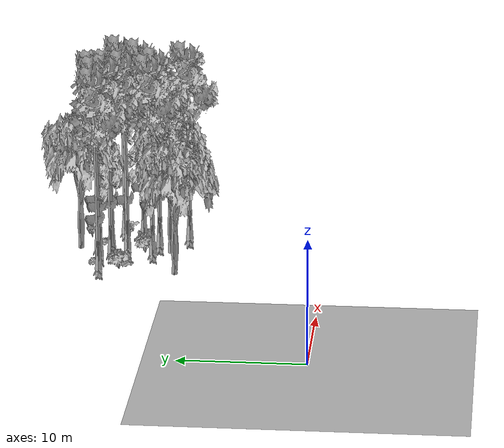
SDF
<sdf version="1.7">
 <world name="default">
  <model name="ground_plane">
   <static>1</static>
   <link name="link">
    <collision name="collision">
     <pose>-50 0 0 0 -0 0</pose>
     <geometry><plane><normal>0 0 1</normal><size>80 80</size></plane></geometry>
     <surface><contact><ode><min_depth>0.01</min_depth><max_vel>0</max_vel></ode></contact></surface>
    </collision>
    <visual name="grass">
     <cast_shadows>0</cast_shadows>
     <geometry>
      <mesh>
       <scale>0.46714285714285714 0.46714285714285714 0.1</scale>
       <uri>file://grass_plane/meshes/grass_plane.dae</uri>
      </mesh>
     </geometry>
    </visual>
   </link>
  </model>
  <model name="Tree 157">
   <static>1</static>
   <pose>23.54820163387506 12.941814298368108 0 1.57079 -0 0</pose>
   <link name="link">
    <collision name="collision">
     <geometry><mesh><scale>3.5 5 3.5</scale><uri>model://tree_2/meshes/tree_2.obj</uri></mesh></geometry>
    </collision>
    <visual name="visual">
     <geometry><mesh><scale>3.5 5 3.5</scale><uri>model://tree_2/meshes/tree_2.obj</uri></mesh></geometry>
    </visual>
   </link>
  </model>
  <model name="Tree 166">
   <static>1</static>
   <pose>28.312071939999186 17.34370366367807 0 1.57079 -0 0</pose>
   <link name="link">
    <collision name="collision">
     <geometry><mesh><scale>3.5 5 3.5</scale><uri>model://tree_9/meshes/tree_9.obj</uri></mesh></geometry>
    </collision>
    <visual name="visual">
     <geometry><mesh><scale>3.5 5 3.5</scale><uri>model://tree_9/meshes/tree_9.obj</uri></mesh></geometry>
    </visual>
   </link>
  </model>
  <model name="Tree 167">
   <static>1</static>
   <pose>24.15353659060665 20.50231190277455 0 1.57079 -0 0</pose>
   <link name="link">
    <collision name="collision">
     <geometry><mesh><scale>3.5 5 3.5</scale><uri>model://tree_2/meshes/tree_2.obj</uri></mesh></geometry>
    </collision>
    <visual name="visual">
     <geometry><mesh><scale>3.5 5 3.5</scale><uri>model://tree_2/meshes/tree_2.obj</uri></mesh></geometry>
    </visual>
   </link>
  </model>
  <model name="Tree 198">
   <static>1</static>
   <pose>19.50779213704063 12.173615237469733 0 1.57079 -0 0</pose>
   <link name="link">
    <collision name="collision">
     <geometry><mesh><scale>3.5 5 3.5</scale><uri>model://tree_2/meshes/tree_2.obj</uri></mesh></geometry>
    </collision>
    <visual name="visual">
     <geometry><mesh><scale>3.5 5 3.5</scale><uri>model://tree_2/meshes/tree_2.obj</uri></mesh></geometry>
    </visual>
   </link>
  </model>
  <model name="Tree 201">
   <static>1</static>
   <pose>22.130124557326454 18.67228083154879 0 1.57079 -0 0</pose>
   <link name="link">
    <collision name="collision">
     <geometry><mesh><scale>3.5 5 3.5</scale><uri>model://tree_9/meshes/tree_9.obj</uri></mesh></geometry>
    </collision>
    <visual name="visual">
     <geometry><mesh><scale>3.5 5 3.5</scale><uri>model://tree_9/meshes/tree_9.obj</uri></mesh></geometry>
    </visual>
   </link>
  </model>
  <model name="Tree 228">
   <static>1</static>
   <pose>22.76174167287619 17.835215629906315 0 1.57079 -0 0</pose>
   <link name="link">
    <collision name="collision">
     <geometry><mesh><scale>3.5 5 3.5</scale><uri>model://tree_9/meshes/tree_9.obj</uri></mesh></geometry>
    </collision>
    <visual name="visual">
     <geometry><mesh><scale>3.5 5 3.5</scale><uri>model://tree_9/meshes/tree_9.obj</uri></mesh></geometry>
    </visual>
   </link>
  </model>
  <model name="Tree 269">
   <static>1</static>
   <pose>23.800431441113837 19.063223090886396 0 1.57079 -0 0</pose>
   <link name="link">
    <collision name="collision">
     <geometry><mesh><scale>3.5 5 3.5</scale><uri>model://tree_9/meshes/tree_9.obj</uri></mesh></geometry>
    </collision>
    <visual name="visual">
     <geometry><mesh><scale>3.5 5 3.5</scale><uri>model://tree_9/meshes/tree_9.obj</uri></mesh></geometry>
    </visual>
   </link>
  </model>
  <model name="Tree 277">
   <static>1</static>
   <pose>19.02769934189945 18.389157425807092 0 1.57079 -0 0</pose>
   <link name="link">
    <collision name="collision">
     <geometry><mesh><scale>3.5 5 3.5</scale><uri>model://tree_9/meshes/tree_9.obj</uri></mesh></geometry>
    </collision>
    <visual name="visual">
     <geometry><mesh><scale>3.5 5 3.5</scale><uri>model://tree_9/meshes/tree_9.obj</uri></mesh></geometry>
    </visual>
   </link>
  </model>
  <model name="Tree 278">
   <static>1</static>
   <pose>23.136211712147293 14.42063124591671 0 1.57079 -0 0</pose>
   <link name="link">
    <collision name="collision">
     <geometry><mesh><scale>3.5 5 3.5</scale><uri>model://tree_9/meshes/tree_9.obj</uri></mesh></geometry>
    </collision>
    <visual name="visual">
     <geometry><mesh><scale>3.5 5 3.5</scale><uri>model://tree_9/meshes/tree_9.obj</uri></mesh></geometry>
    </visual>
   </link>
  </model>
  <model name="Tree 348">
   <static>1</static>
   <pose>26.990892058648015 11.747368834706968 0 1.57079 -0 0</pose>
   <link name="link">
    <collision name="collision">
     <geometry><mesh><scale>3.5 5 3.5</scale><uri>model://tree_9/meshes/tree_9.obj</uri></mesh></geometry>
    </collision>
    <visual name="visual">
     <geometry><mesh><scale>3.5 5 3.5</scale><uri>model://tree_9/meshes/tree_9.obj</uri></mesh></geometry>
    </visual>
   </link>
  </model>
  <model name="Tree 367">
   <static>1</static>
   <pose>18.565144012881063 12.09380436298148 0 1.57079 -0 0</pose>
   <link name="link">
    <collision name="collision">
     <geometry><mesh><scale>3.5 5 3.5</scale><uri>model://tree_2/meshes/tree_2.obj</uri></mesh></geometry>
    </collision>
    <visual name="visual">
     <geometry><mesh><scale>3.5 5 3.5</scale><uri>model://tree_2/meshes/tree_2.obj</uri></mesh></geometry>
    </visual>
   </link>
  </model>
  <model name="Tree 457">
   <static>1</static>
   <pose>27.481867455380765 15.64547613299311 0 1.57079 -0 0</pose>
   <link name="link">
    <collision name="collision">
     <geometry><mesh><scale>3.5 5 3.5</scale><uri>model://tree_9/meshes/tree_9.obj</uri></mesh></geometry>
    </collision>
    <visual name="visual">
     <geometry><mesh><scale>3.5 5 3.5</scale><uri>model://tree_9/meshes/tree_9.obj</uri></mesh></geometry>
    </visual>
   </link>
  </model>
  <model name="Tree 500">
   <static>1</static>
   <pose>24.165695099321447 17.912271427583292 0 1.57079 -0 0</pose>
   <link name="link">
    <collision name="collision">
     <geometry><mesh><scale>3.5 5 3.5</scale><uri>model://tree_9/meshes/tree_9.obj</uri></mesh></geometry>
    </collision>
    <visual name="visual">
     <geometry><mesh><scale>3.5 5 3.5</scale><uri>model://tree_9/meshes/tree_9.obj</uri></mesh></geometry>
    </visual>
   </link>
  </model>
  <model name="Tree 582">
   <static>1</static>
   <pose>24.069411549980757 16.62148240224888 0 1.57079 -0 0</pose>
   <link name="link">
    <collision name="collision">
     <geometry><mesh><scale>3.5 5 3.5</scale><uri>model://tree_9/meshes/tree_9.obj</uri></mesh></geometry>
    </collision>
    <visual name="visual">
     <geometry><mesh><scale>3.5 5 3.5</scale><uri>model://tree_9/meshes/tree_9.obj</uri></mesh></geometry>
    </visual>
   </link>
  </model>
  <model name="Tree 593">
   <static>1</static>
   <pose>25.137368143525713 14.056511272068391 0 1.57079 -0 0</pose>
   <link name="link">
    <collision name="collision">
     <geometry><mesh><scale>3.5 5 3.5</scale><uri>model://tree_9/meshes/tree_9.obj</uri></mesh></geometry>
    </collision>
    <visual name="visual">
     <geometry><mesh><scale>3.5 5 3.5</scale><uri>model://tree_9/meshes/tree_9.obj</uri></mesh></geometry>
    </visual>
   </link>
  </model>
  <model name="Bush 183">
   <static>1</static>
   <pose>23.602743612292954 15.078426916158769 0 1.57079 -0 0</pose>
   <link name="link">
    <collision name="collision">
     <geometry><mesh><scale>2 2 2</scale><uri>model://bush_1/meshes/bush_1.obj</uri></mesh></geometry>
     <surface><contact><collide_without_contact>false</collide_without_contact></contact></surface>
    </collision>
    <visual name="visual">
     <geometry><mesh><scale>2 2 2</scale><uri>model://bush_1/meshes/bush_1.obj</uri></mesh></geometry>
    </visual>
   </link>
  </model>
  <model name="Bush 353">
   <static>1</static>
   <pose>25.618863194449702 18.61008505646371 0 1.57079 -0 0</pose>
   <link name="link">
    <collision name="collision">
     <geometry><mesh><scale>2 2 2</scale><uri>model://bush_2/meshes/bush_2.obj</uri></mesh></geometry>
     <surface><contact><collide_without_contact>false</collide_without_contact></contact></surface>
    </collision>
    <visual name="visual">
     <geometry><mesh><scale>2 2 2</scale><uri>model://bush_2/meshes/bush_2.obj</uri></mesh></geometry>
    </visual>
   </link>
  </model>
  <model name="Bush 367">
   <static>1</static>
   <pose>20.656470777103728 16.243922739723054 0 1.57079 -0 0</pose>
   <link name="link">
    <collision name="collision">
     <geometry><mesh><scale>2 2 2</scale><uri>model://bush_2/meshes/bush_2.obj</uri></mesh></geometry>
     <surface><contact><collide_without_contact>false</collide_without_contact></contact></surface>
    </collision>
    <visual name="visual">
     <geometry><mesh><scale>2 2 2</scale><uri>model://bush_2/meshes/bush_2.obj</uri></mesh></geometry>
    </visual>
   </link>
  </model>
  <model name="Bush 375">
   <static>1</static>
   <pose>19.544367954595558 16.772763494937593 0 1.57079 -0 0</pose>
   <link name="link">
    <collision name="collision">
     <geometry><mesh><scale>2 2 2</scale><uri>model://bush_1/meshes/bush_1.obj</uri></mesh></geometry>
     <surface><contact><collide_without_contact>false</collide_without_contact></contact></surface>
    </collision>
    <visual name="visual">
     <geometry><mesh><scale>2 2 2</scale><uri>model://bush_1/meshes/bush_1.obj</uri></mesh></geometry>
    </visual>
   </link>
  </model>
  <model name="Bush 417">
   <static>1</static>
   <pose>20.860410357475104 18.95116309378335 0 1.57079 -0 0</pose>
   <link name="link">
    <collision name="collision">
     <geometry><mesh><scale>2 2 2</scale><uri>model://bush_2/meshes/bush_2.obj</uri></mesh></geometry>
     <surface><contact><collide_without_contact>false</collide_without_contact></contact></surface>
    </collision>
    <visual name="visual">
     <geometry><mesh><scale>2 2 2</scale><uri>model://bush_2/meshes/bush_2.obj</uri></mesh></geometry>
    </visual>
   </link>
  </model>
  <model name="Bush 460">
   <static>1</static>
   <pose>27.294484137690006 16.821239922192234 0 1.57079 -0 0</pose>
   <link name="link">
    <collision name="collision">
     <geometry><mesh><scale>2 2 2</scale><uri>model://bush_0/meshes/bush_0.obj</uri></mesh></geometry>
     <surface><contact><collide_without_contact>false</collide_without_contact></contact></surface>
    </collision>
    <visual name="visual">
     <geometry><mesh><scale>2 2 2</scale><uri>model://bush_0/meshes/bush_0.obj</uri></mesh></geometry>
    </visual>
   </link>
  </model>
  <model name="Bush 494">
   <static>1</static>
   <pose>28.085539059589436 15.390813863565995 0 1.57079 -0 0</pose>
   <link name="link">
    <collision name="collision">
     <geometry><mesh><scale>2 2 2</scale><uri>model://bush_2/meshes/bush_2.obj</uri></mesh></geometry>
     <surface><contact><collide_without_contact>false</collide_without_contact></contact></surface>
    </collision>
    <visual name="visual">
     <geometry><mesh><scale>2 2 2</scale><uri>model://bush_2/meshes/bush_2.obj</uri></mesh></geometry>
    </visual>
   </link>
  </model>
  <model name="Bush 626">
   <static>1</static>
   <pose>26.974238543738167 19.95757695768927 0 1.57079 -0 0</pose>
   <link name="link">
    <collision name="collision">
     <geometry><mesh><scale>2 2 2</scale><uri>model://bush_0/meshes/bush_0.obj</uri></mesh></geometry>
     <surface><contact><collide_without_contact>false</collide_without_contact></contact></surface>
    </collision>
    <visual name="visual">
     <geometry><mesh><scale>2 2 2</scale><uri>model://bush_0/meshes/bush_0.obj</uri></mesh></geometry>
    </visual>
   </link>
  </model>
 </world>
</sdf>
